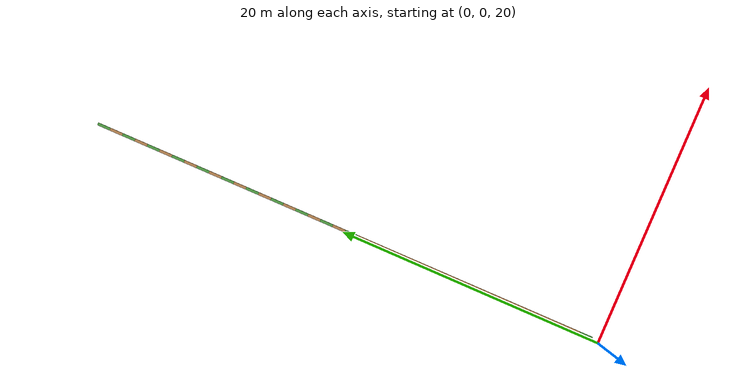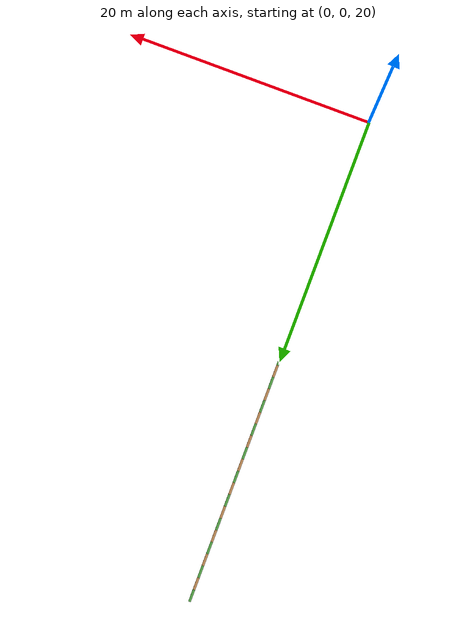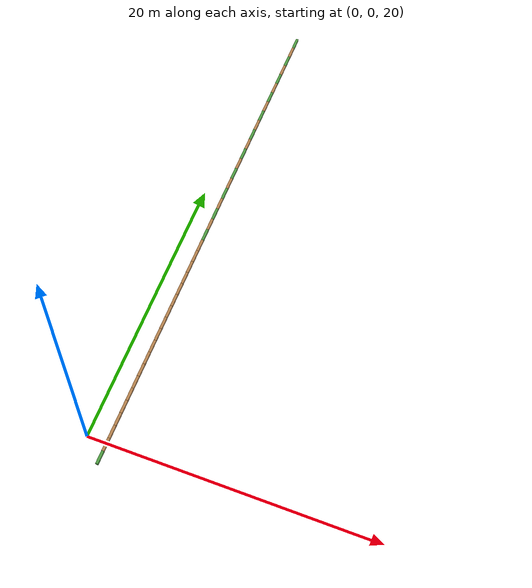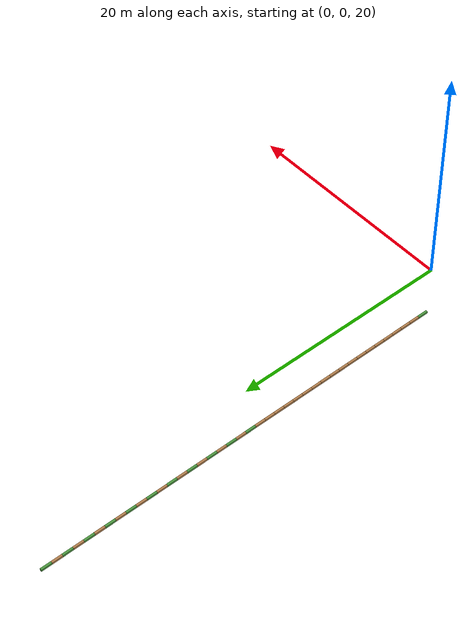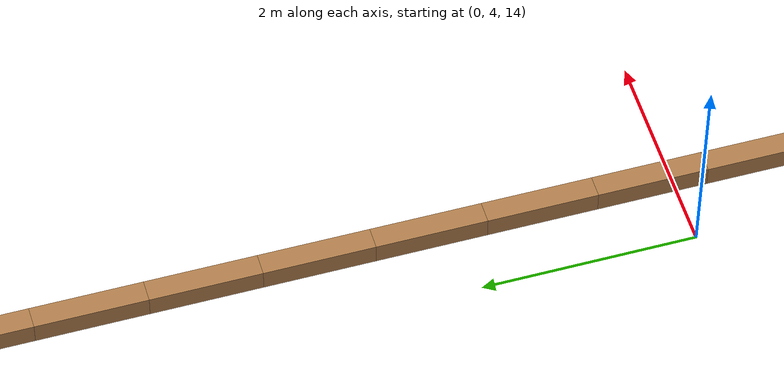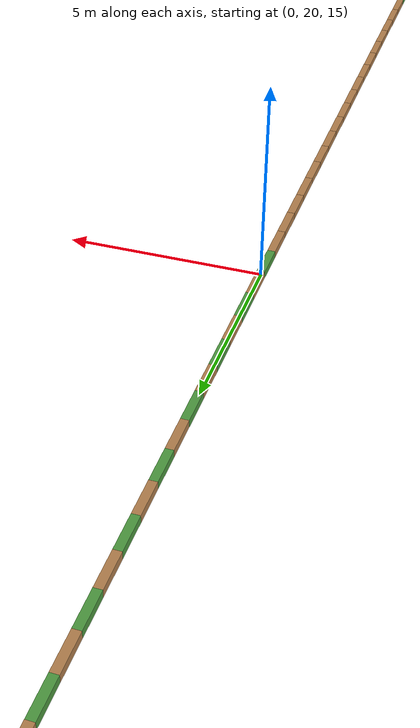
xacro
<?xml version="1.0"?>
<robot name="continuous_pendulum"
       xmlns:xi="http://www.w3.org/2001/XInclude"
       xmlns:gazebo="http://playerstage.sourceforge.net/gazebo/xmlschema/#gz"
       xmlns:model="http://playerstage.sourceforge.net/gazebo/xmlschema/#model"
       xmlns:sensor="http://playerstage.sourceforge.net/gazebo/xmlschema/#sensor"
       xmlns:body="http://playerstage.sourceforge.net/gazebo/xmlschema/#body"
       xmlns:geom="http://playerstage.sourceforge.net/gazebo/xmlschema/#geom"
       xmlns:joint="http://playerstage.sourceforge.net/gazebo/xmlschema/#joint"
       xmlns:interface="http://playerstage.sourceforge.net/gazebo/xmlschema/#interface"
       xmlns:rendering="http://playerstage.sourceforge.net/gazebo/xmlschema/#rendering"
       xmlns:renderable="http://playerstage.sourceforge.net/gazebo/xmlschema/#renderable"
       xmlns:controller="http://playerstage.sourceforge.net/gazebo/xmlschema/#controller"
       xmlns:xacro="http://ros.org/wiki/xacro"
       xmlns:physics="http://playerstage.sourceforge.net/gazebo/xmlschema/#physics">

  <link name="world"/>
  <!--
     A pendulum constructed from single continuous link and a mass with some moment of inertia
  -->
  <xacro:macro name="one_link" params="link_name parent *axis *origin material">
    <joint name="${link_name}_joint" type="continuous" >
      <insert_block name="origin"/>
      <insert_block name="axis"/>
      <parent link="${parent}" />
      <child link="${link_name}" />
      <dynamics damping="100.0" />
    </joint>
    <link name="${link_name}">
      <inertial >
        <mass value="1.0" />
        <origin xyz="0 1 0" />
        <inertia  ixx="0.0" ixy="0.0"  ixz="0.0"  iyy="0.0"  iyz="0.0"  izz="0.0" />
      </inertial>
      <visual >
        <origin xyz="0 0.5 0" rpy="0 0 0" />
        <geometry>
          <box size="0.2 1.0 0.2" />
        </geometry>
      </visual>
      <collision >
        <origin xyz="0 0.5 0" rpy="0 0 0" />
        <geometry>
          <box size="0.2 1.0 0.2" />
        </geometry>
      </collision>
    </link>
    <gazebo reference="${link_name}">
      <material>${material}</material>
      <turnGravityOff>false</turnGravityOff>
    </gazebo>
    <gazebo>
      <controller:gazebo_ros_new_p3d name="p3d_${link_name}_controller" plugin="libgazebo_ros_new_p3d.so">
          <alwaysOn>true</alwaysOn>
          <updateRate>100.0</updateRate>
          <bodyName>${link_name}</bodyName>
          <topicName>${link_name}_pose</topicName>
          <frameName>map</frameName>
      </controller:gazebo_ros_new_p3d>
    </gazebo>
    <transmission type="SimpleTransmission" name="${link_name}_trans">
      <actuator name="${link_name}_motor" />
      <joint name="${link_name}_joint" />
      <mechanicalReduction>1</mechanicalReduction>
      <motorTorqueConstant>1</motorTorqueConstant>
    </transmission>
  </xacro:macro>
  <xacro:macro name="pendulum" params="chain_num x_offset">
    <xacro:one_link link_name="link1_${chain_num}" parent="world" material="Gazebo/GrassFloor">
      <origin xyz="${x_offset} 0 15" rpy="0 0 0"/>
      <axis xyz="1 0 0" />
    </xacro:one_link>
    <xacro:one_link link_name="link2_${chain_num}" parent="link1_${chain_num}" material="Gazebo/LightWood">
      <origin xyz="0 1 0" rpy="0 0 0"/>
      <axis xyz="1 0 0" />
    </xacro:one_link>
    <xacro:one_link link_name="link3_${chain_num}" parent="link2_${chain_num}" material="Gazebo/LightWood">
      <origin xyz="0 1 0" rpy="0 0 0"/>
      <axis xyz="1 0 0" />
    </xacro:one_link>
    <xacro:one_link link_name="link4_${chain_num}" parent="link3_${chain_num}" material="Gazebo/LightWood">
      <origin xyz="0 1 0" rpy="0 0 0"/>
      <axis xyz="1 0 0" />
    </xacro:one_link>
    <xacro:one_link link_name="link5_${chain_num}" parent="link4_${chain_num}" material="Gazebo/LightWood">
      <origin xyz="0 1 0" rpy="0 0 0"/>
      <axis xyz="1 0 0" />
    </xacro:one_link>
    <xacro:one_link link_name="link6_${chain_num}" parent="link5_${chain_num}" material="Gazebo/LightWood">
      <origin xyz="0 1 0" rpy="0 0 0"/>
      <axis xyz="1 0 0" />
    </xacro:one_link>
    <xacro:one_link link_name="link7_${chain_num}" parent="link6_${chain_num}" material="Gazebo/LightWood">
      <origin xyz="0 1 0" rpy="0 0 0"/>
      <axis xyz="1 0 0" />
    </xacro:one_link>
    <xacro:one_link link_name="link8_${chain_num}" parent="link7_${chain_num}" material="Gazebo/LightWood">
      <origin xyz="0 1 0" rpy="0 0 0"/>
      <axis xyz="1 0 0" />
    </xacro:one_link>
    <xacro:one_link link_name="link9_${chain_num}" parent="link8_${chain_num}" material="Gazebo/LightWood">
      <origin xyz="0 1 0" rpy="0 0 0"/>
      <axis xyz="1 0 0" />
    </xacro:one_link>
    <xacro:one_link link_name="link10_${chain_num}" parent="link9_${chain_num}" material="Gazebo/LightWood">
      <origin xyz="0 1 0" rpy="0 0 0"/>
      <axis xyz="1 0 0" />
    </xacro:one_link>
    <xacro:one_link link_name="link11_${chain_num}" parent="link10_${chain_num}" material="Gazebo/LightWood">
      <origin xyz="0 1 0" rpy="0 0 0"/>
      <axis xyz="1 0 0" />
    </xacro:one_link>
    <xacro:one_link link_name="link12_${chain_num}" parent="link11_${chain_num}" material="Gazebo/LightWood">
      <origin xyz="0 1 0" rpy="0 0 0"/>
      <axis xyz="1 0 0" />
    </xacro:one_link>
    <xacro:one_link link_name="link13_${chain_num}" parent="link12_${chain_num}" material="Gazebo/LightWood">
      <origin xyz="0 1 0" rpy="0 0 0"/>
      <axis xyz="1 0 0" />
    </xacro:one_link>
    <xacro:one_link link_name="link14_${chain_num}" parent="link13_${chain_num}" material="Gazebo/LightWood">
      <origin xyz="0 1 0" rpy="0 0 0"/>
      <axis xyz="1 0 0" />
    </xacro:one_link>
    <xacro:one_link link_name="link15_${chain_num}" parent="link14_${chain_num}" material="Gazebo/LightWood">
      <origin xyz="0 1 0" rpy="0 0 0"/>
      <axis xyz="1 0 0" />
    </xacro:one_link>
    <xacro:one_link link_name="link16_${chain_num}" parent="link15_${chain_num}" material="Gazebo/LightWood">
      <origin xyz="0 1 0" rpy="0 0 0"/>
      <axis xyz="1 0 0" />
    </xacro:one_link>
    <xacro:one_link link_name="link17_${chain_num}" parent="link16_${chain_num}" material="Gazebo/LightWood">
      <origin xyz="0 1 0" rpy="0 0 0"/>
      <axis xyz="1 0 0" />
    </xacro:one_link>
    <xacro:one_link link_name="link18_${chain_num}" parent="link17_${chain_num}" material="Gazebo/LightWood">
      <origin xyz="0 1 0" rpy="0 0 0"/>
      <axis xyz="1 0 0" />
    </xacro:one_link>
    <xacro:one_link link_name="link19_${chain_num}" parent="link18_${chain_num}" material="Gazebo/LightWood">
      <origin xyz="0 1 0" rpy="0 0 0"/>
      <axis xyz="1 0 0" />
    </xacro:one_link>
    <xacro:one_link link_name="link20_${chain_num}" parent="link19_${chain_num}" material="Gazebo/GrassFloor">
      <origin xyz="0 1 0" rpy="0 0 0"/>
      <axis xyz="1 0 0" />
    </xacro:one_link>
    <xacro:one_link link_name="link21_${chain_num}" parent="link20_${chain_num}" material="Gazebo/LightWood">
      <origin xyz="0 1 0" rpy="0 0 0"/>
      <axis xyz="1 0 0" />
    </xacro:one_link>
    <xacro:one_link link_name="link22_${chain_num}" parent="link21_${chain_num}" material="Gazebo/GrassFloor">
      <origin xyz="0 1 0" rpy="0 0 0"/>
      <axis xyz="1 0 0" />
    </xacro:one_link>
    <xacro:one_link link_name="link23_${chain_num}" parent="link22_${chain_num}" material="Gazebo/LightWood">
      <origin xyz="0 1 0" rpy="0 0 0"/>
      <axis xyz="1 0 0" />
    </xacro:one_link>
    <xacro:one_link link_name="link24_${chain_num}" parent="link23_${chain_num}" material="Gazebo/GrassFloor">
      <origin xyz="0 1 0" rpy="0 0 0"/>
      <axis xyz="1 0 0" />
    </xacro:one_link>
    <xacro:one_link link_name="link25_${chain_num}" parent="link24_${chain_num}" material="Gazebo/LightWood">
      <origin xyz="0 1 0" rpy="0 0 0"/>
      <axis xyz="1 0 0" />
    </xacro:one_link>
    <xacro:one_link link_name="link26_${chain_num}" parent="link25_${chain_num}" material="Gazebo/GrassFloor">
      <origin xyz="0 1 0" rpy="0 0 0"/>
      <axis xyz="1 0 0" />
    </xacro:one_link>
    <xacro:one_link link_name="link27_${chain_num}" parent="link26_${chain_num}" material="Gazebo/LightWood">
      <origin xyz="0 1 0" rpy="0 0 0"/>
      <axis xyz="1 0 0" />
    </xacro:one_link>
    <xacro:one_link link_name="link28_${chain_num}" parent="link27_${chain_num}" material="Gazebo/GrassFloor">
      <origin xyz="0 1 0" rpy="0 0 0"/>
      <axis xyz="1 0 0" />
    </xacro:one_link>
    <xacro:one_link link_name="link29_${chain_num}" parent="link28_${chain_num}" material="Gazebo/LightWood">
      <origin xyz="0 1 0" rpy="0 0 0"/>
      <axis xyz="1 0 0" />
    </xacro:one_link>
    <xacro:one_link link_name="link30_${chain_num}" parent="link29_${chain_num}" material="Gazebo/GrassFloor">
      <origin xyz="0 1 0" rpy="0 0 0"/>
      <axis xyz="1 0 0" />
    </xacro:one_link>
    <xacro:one_link link_name="link31_${chain_num}" parent="link30_${chain_num}" material="Gazebo/LightWood">
      <origin xyz="0 1 0" rpy="0 0 0"/>
      <axis xyz="1 0 0" />
    </xacro:one_link>
    <xacro:one_link link_name="link32_${chain_num}" parent="link31_${chain_num}" material="Gazebo/GrassFloor">
      <origin xyz="0 1 0" rpy="0 0 0"/>
      <axis xyz="1 0 0" />
    </xacro:one_link>
    <xacro:one_link link_name="link33_${chain_num}" parent="link32_${chain_num}" material="Gazebo/LightWood">
      <origin xyz="0 1 0" rpy="0 0 0"/>
      <axis xyz="1 0 0" />
    </xacro:one_link>
    <xacro:one_link link_name="link34_${chain_num}" parent="link33_${chain_num}" material="Gazebo/GrassFloor">
      <origin xyz="0 1 0" rpy="0 0 0"/>
      <axis xyz="1 0 0" />
    </xacro:one_link>
    <xacro:one_link link_name="link35_${chain_num}" parent="link34_${chain_num}" material="Gazebo/LightWood">
      <origin xyz="0 1 0" rpy="0 0 0"/>
      <axis xyz="1 0 0" />
    </xacro:one_link>
    <xacro:one_link link_name="link36_${chain_num}" parent="link35_${chain_num}" material="Gazebo/GrassFloor">
      <origin xyz="0 1 0" rpy="0 0 0"/>
      <axis xyz="1 0 0" />
    </xacro:one_link>
    <xacro:one_link link_name="link37_${chain_num}" parent="link36_${chain_num}" material="Gazebo/LightWood">
      <origin xyz="0 1 0" rpy="0 0 0"/>
      <axis xyz="1 0 0" />
    </xacro:one_link>
    <xacro:one_link link_name="link38_${chain_num}" parent="link37_${chain_num}" material="Gazebo/GrassFloor">
      <origin xyz="0 1 0" rpy="0 0 0"/>
      <axis xyz="1 0 0" />
    </xacro:one_link>
    <xacro:one_link link_name="link39_${chain_num}" parent="link38_${chain_num}" material="Gazebo/LightWood">
      <origin xyz="0 1 0" rpy="0 0 0"/>
      <axis xyz="1 0 0" />
    </xacro:one_link>
    <xacro:one_link link_name="link40_${chain_num}" parent="link39_${chain_num}" material="Gazebo/GrassFloor">
      <origin xyz="0 1 0" rpy="0 0 0"/>
      <axis xyz="1 0 0" />
    </xacro:one_link>

  </xacro:macro>

  <xacro:pendulum x_offset="0" chain_num="0" />

  <gazebo>
      <controller:gazebo_ros_new_controller_manager name="gazebo_ros_new_controller_manager" plugin="libgazebo_ros_new_controller_manager.so">
        <alwaysOn>true</alwaysOn>
        <updateRate>1000.0</updateRate>
        <interface:audio name="gazebo_ros_new_controller_manager_dummy_iface" />
      </controller:gazebo_ros_new_controller_manager>
  </gazebo>

</robot>
